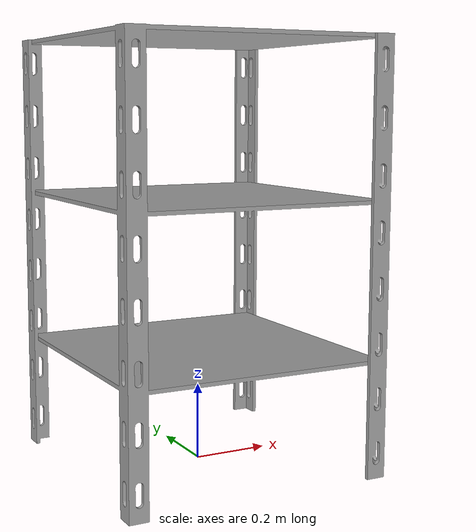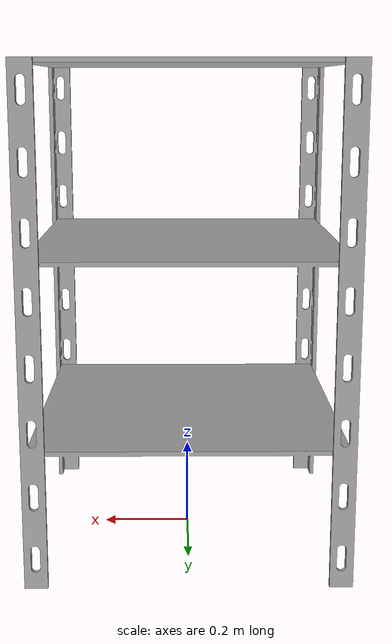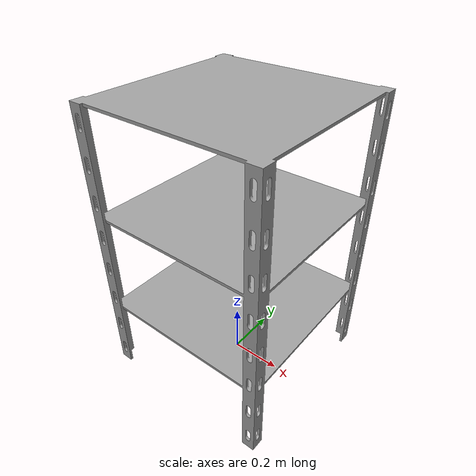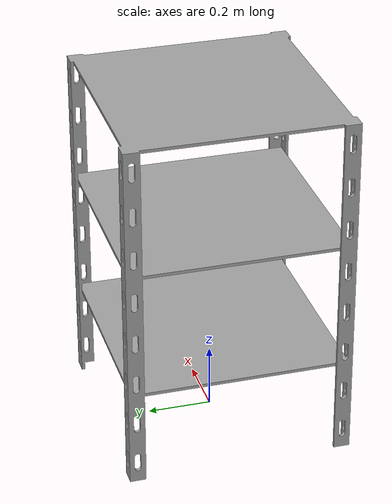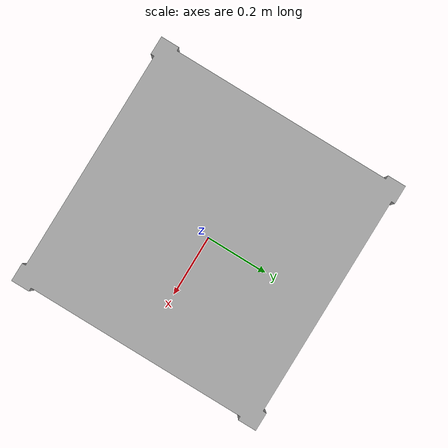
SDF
<?xml version="1.0" ?>
<sdf version="1.5">
  <model name="shelf">
    <static>true</static>

    <link name="link">
      <collision name="collision">
        <geometry>
          <mesh>
            <uri>model://shelf/meshes/shelf.dae</uri>
          </mesh>
        </geometry>
      </collision>
      <visual name="visual">
        <geometry>
          <mesh>
            <uri>model://shelf/meshes/shelf.dae</uri>
          </mesh>
        </geometry>
      </visual>
    </link>
  </model>
</sdf>
